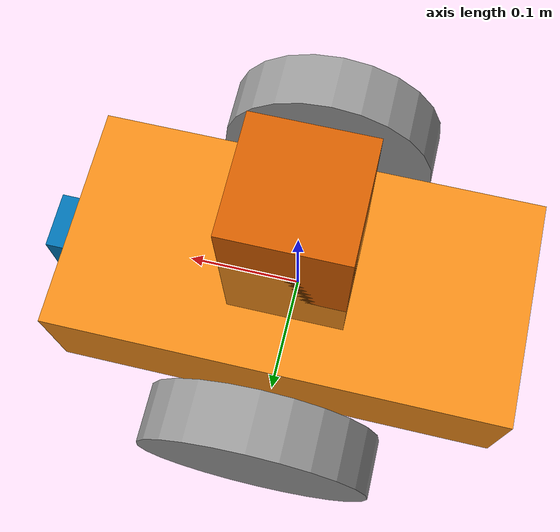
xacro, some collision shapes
<?xml version='1.0'?>

<robot name="my_robot" xmlns:xacro="http://www.ros.org/wiki/xacro">
  <xacro:include filename="$(find my_robot)/urdf/my_robot.gazebo" />

  <link name="robot_footprint"></link>
  <joint name="robot_footprint_joint" type="fixed">
    <origin xyz="0 0 0" rpy="0 0 0" />
    <parent link="robot_footprint"/>
    <child link="chassis" />
  </joint>

  <link name='chassis'>
    <pose>0 0 0.1 0 0 0</pose>

    <inertial>
      <mass value="15.0"/>
      <origin xyz="0.0 0 0" rpy=" 0 0 0"/>
      <inertia
          ixx="0.1" ixy="0" ixz="0"
          iyy="0.1" iyz="0"
          izz="0.1"
      />
    </inertial>

    <collision name='collision'>
      <origin xyz="0 0 0" rpy=" 0 0 0"/>
      <geometry>
        <box size=".4 .2 .1"/>
      </geometry>
    </collision>

    <visual name='chassis_visual'>
      <origin xyz="0 0 0" rpy=" 0 0 0"/>
      <geometry>
        <box size=".4 .2 .1"/>
      </geometry>
    </visual>

    <visual name= 'tower'>
       <origin xyz="0 0 0.1" rpy=" 0 0 0"/>
      <geometry>
        <box size=".1 .1 .1"/>
      </geometry>
     </visual>
     <collision name= 'tower'>
       <origin xyz="0 0 0.01" rpy=" 0 0 0"/>
      <geometry>
        <box size=".1 .1 .1"/>
      </geometry>
     </collision>

    <collision name='back_caster_collision'>
      <origin xyz="-0.15 0 -0.05" rpy=" 0 0 0"/>
      <geometry>
        <sphere radius="0.0499"/>
      </geometry>
    </collision>

    <visual name='back_caster_visual'>
      <origin xyz="-0.15 0 -0.05" rpy=" 0 0 0"/>
      <geometry>
        <sphere radius="0.05"/>
      </geometry>
    </visual>

    <collision name='front_caster_collision'>
      <origin xyz="0.15 0 -0.05" rpy=" 0 0 0"/>
      <geometry>
        <sphere radius="0.0499"/>
      </geometry>
    </collision>

    <visual name='front_caster_visual'>
      <origin xyz="0.15 0 -0.05" rpy=" 0 0 0"/>
      <geometry>
        <sphere radius="0.05"/>
      </geometry>
    </visual>

  </link>

  <link name='left_wheel'>
    <pose>0 0 0.1 0 0 0</pose>

    <inertial>
      <mass value="5.0"/>
      <origin xyz="0.0 0 0" rpy=" 0 1.5707 1.5707"/>
      <inertia
          ixx="0.1" ixy="0" ixz="0"
          iyy="0.1" iyz="0"
          izz="0.1"
      />
    </inertial>

    <collision name='collision'>
      <origin xyz="0.0 0 0" rpy=" 0 1.5707 1.5707"/>
      <geometry>
        <cylinder radius="0.1" length="0.05"/>
      </geometry>
    </collision>

    <visual name='left_wheel_visual'>
      <origin xyz="0.0 0 0" rpy=" 0 1.5707 1.5707"/>
      <geometry>
        <cylinder radius="0.1" length="0.05"/>
      </geometry>
    </visual>

    </link>

     <link name='right_wheel'>
    <pose>0 0 0.1 0 0 0</pose>

    <inertial>
      <mass value="5.0"/>
      <origin xyz="0.0 0 0" rpy=" 0 1.5707 1.5707"/>
      <inertia
          ixx="0.1" ixy="0" ixz="0"
          iyy="0.1" iyz="0"
          izz="0.1"
      />
    </inertial>

    <collision name='collision'>
      <origin xyz="0.0 0 0" rpy=" 0 1.5707 1.5707"/>
      <geometry>
        <cylinder radius="0.1" length="0.05"/>
      </geometry>
    </collision>

    <visual name='right_wheel_visual'>
      <origin xyz="0.0 0 0" rpy=" 0 1.5707 1.5707"/>
      <geometry>
        <cylinder radius="0.1" length="0.05"/>
      </geometry>
    </visual>

    </link>

	  <joint type="continuous" name="left_wheel_hinge">
    <origin xyz="0 0.15 0" rpy="0 0 0"/>
    <child link="left_wheel"/>
    <parent link="chassis"/>
    <axis xyz="0 1 0" rpy="0 0 0"/>
    <limit effort="10000" velocity="1000"/>
    <dynamics damping="1.0" friction="1.0"/>
  </joint>

    <joint type="continuous" name="right_wheel_hinge">
    <origin xyz="0 -0.15 0" rpy="0 0 0"/>
    <child link="right_wheel"/>
    <parent link="chassis"/>
    <axis xyz="0 1 0" rpy="0 0 0"/>
    <limit effort="10000" velocity="1000"/>
    <dynamics damping="1.0" friction="1.0"/>
  </joint>

    <link name='camera'>
    <pose>0 0 0 0 0 0</pose>

    <inertial>
      <mass value="0.1"/>
      <origin xyz="0.05 0.05 0.05" rpy="0 0 0"/>
      <inertia
          ixx="1e-6" ixy="0" ixz="0"
          iyy="1e-6" iyz="0"
          izz="1e-6"
      />
    </inertial>

    <collision name='collision'>
      <origin xyz="0.0 0 0" rpy=" 0 1.5707 1.5707"/>
      <geometry>
        <box size="0.05 0.05 0.05"/>
      </geometry>
    </collision>

    <visual name='visual'>
      <origin xyz="0.0 0 0" rpy="0 0 0"/>
      <geometry>
        <box size="0.05 0.05 0.05"/>
      </geometry>
    </visual>

    </link>

  <joint type="fixed" name="camera_joint">
    <origin xyz="0.2 0 0" rpy="0 0 0"/>
    <child link="camera"/>
    <axis xyz="0 1 0" rpy="0 0 0"/>
    <parent link="chassis"/>
  </joint>

    <link name='hokuyo'>
    <pose>0 0 0 0 0 0</pose>

    <inertial>
      <mass value="1e-6"/>
      <origin xyz="0 0 0" rpy="0 0 0"/>
      <inertia
          ixx="1e-6" ixy="0" ixz="0"
          iyy="1e-6" iyz="0"
          izz="1e-6"
      />
    </inertial>

    <collision name='collision'>
      <origin xyz="0.0 0 0" rpy=" 0 0 0"/>
      <geometry>
        <box size="0.1 0.1 0.1"/>
      </geometry>
    </collision>

    <visual name='visual'>
      <origin xyz="0.0 0 0" rpy="0 0 0"/>
      <geometry>

         <mesh filename="package://my_robot/meshes/hokuyo.dae"/>
      </geometry>
    </visual>

    </link>

  <joint type="fixed" name="hokuyo_joint">
    <origin xyz="0.0 0 0.15" rpy="0 0 0"/>
    <axis xyz="0 1 0" rpy="0 0 0"/>
    <child link="hokuyo"/>
    <parent link="chassis"/>
  </joint>

   <joint name="camera_optical_joint" type="fixed">
    <origin xyz="0 0 0" rpy="-1.5707 0 -1.5707"/>
    <parent link="camera"/>
    <child link="camera_link_optical"/>
  </joint>

  <link name="camera_link_optical">
  </link>

  <gazebo reference="left_wheel">
    <material>Gazebo/Grey</material>
</gazebo>

  <gazebo reference="right_wheel">
    <material>Gazebo/Grey</material>
</gazebo>

  <gazebo reference="chassis">
    <material>Gazebo/Orange</material>
</gazebo>

</robot>
